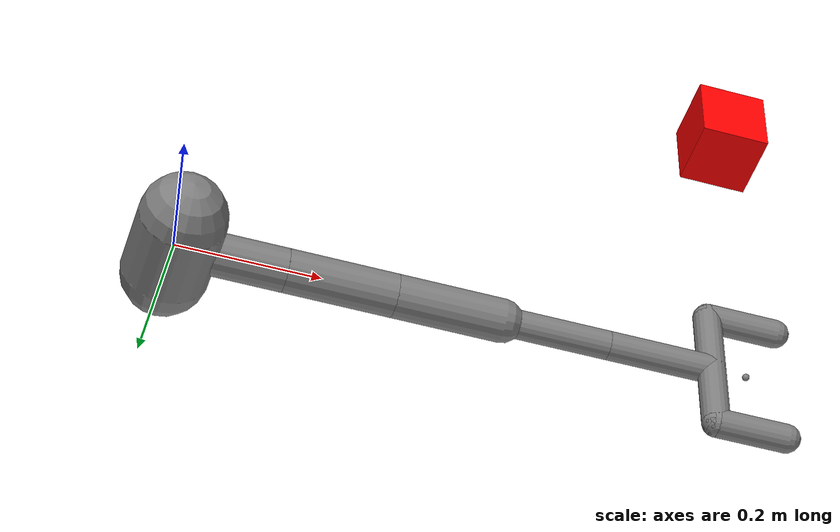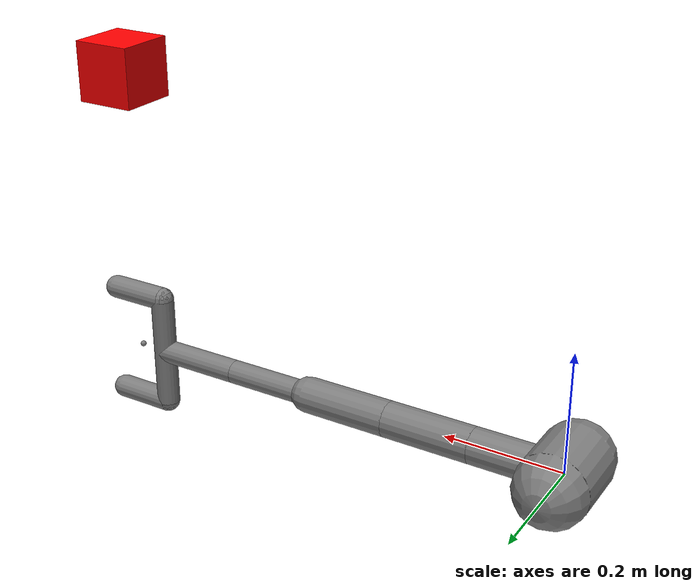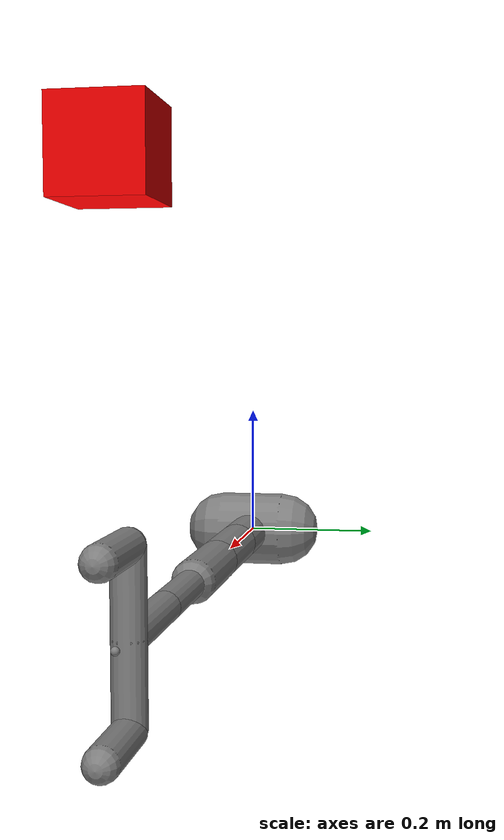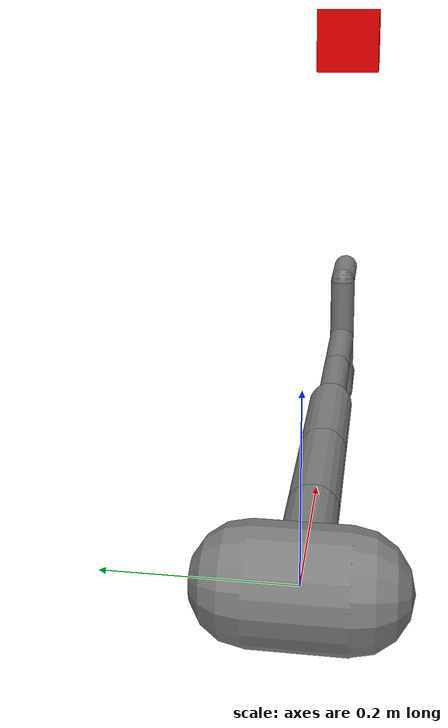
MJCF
<mujoco model="arm3d">
    <compiler inertiafromgeom="true" angle="radian" coordinate="local" />
    <option timestep="0.01" gravity="0 0 0" iterations="20" integrator="Euler" />

    <default>
        <joint armature='0.04' damping="1" limited="true"/>
        <geom friction=".8 .1 .1" density="300" margin="0.002" condim="1" contype="1" conaffinity="1"/>
    </default>

    <worldbody>
        <body name="palm" pos="0 0 0">
            <geom type="capsule" fromto="0 -0.05 0 0 0.05 0" size="0.06"/>
            <body name="proximal_1" pos="0 0 0">
                <joint name="proximal_j_1" type="hinge" pos="0 0 0" axis="0 1 0" range="-2.5236 2.3963" damping="1.0" />
                <geom type="capsule"  fromto="0 0 0 0.15 0 0" size="0.03" contype="1" conaffinity="1"/>
                <body name="distal_1" pos="0.15 0 0">
                    <joint name="distal_j_1" type="hinge" pos="0 0 0" axis="0 0 1" range="-2.3213 2.3" damping="1.0"/>
                    <geom type="capsule"  fromto="0 0 0 0.15 0 0" size="0.03" contype="1" conaffinity="1"/>
                    <body name="distal_2" pos="0.15 0 0">
                        <joint name="distal_j_2" type="hinge" pos="0 0 0" axis="0 1 0" range="-2.3213 2.3" damping="1.0"/>
                        <geom type="capsule" fromto="0 0 0 0.15 0 0" size="0.03" contype="1" conaffinity="1"/>
                        <body name="distal_3" pos="0.15 0 0">
                            <joint name="distal_j_3" type="hinge" pos="0 0 0" axis="0 1 0" range="-2.3213 2.3" damping="1.0"/>
                            <geom type="capsule" fromto="0 0 0 0.15 0 0" size="0.02" contype="1" conaffinity="1"/>
                            <body name="distal_4" pos="0.15 0 0">
                                <joint name="distal_j_4" type="hinge" pos="0 0 0" axis="0 1 0" range="-2.3213 2.3" damping="1.0"/>
                                <geom type="capsule" fromto="0 0 0 0.15 0 0" size="0.02" contype="1" conaffinity="1"/>
                                <body name="distal_5" pos="0.15 0 0">
                                    <site name="tip arm" pos="0.05 0 0" size="0.005" />
                                    <geom type="capsule" fromto="0 0 -0.1 0 0 0.1" size="0.02" contype="1" conaffinity="1" />
                                    <geom type="capsule" fromto="0 0 -0.1 0.1 0 -0.1" size="0.02" contype="1" conaffinity="1" />
                                    <geom type="capsule" fromto="0 0 0.1 0.1 0 0.1" size="0.02" contype="1" conaffinity="1" />
                                </body>
                            </body>
                        </body>
                    </body>
                </body>
            </body>
        </body>

        <body name="goalred" pos="0.8 0.0 0.5">
            <geom rgba="1. 0. 0. 1" type="box" size="0.05 0.05 0.05" density='0.00001' contype="1" conaffinity="1"/>
            <joint name="red_x" type="slide" pos="0 0 0" axis="1 0 0" range="-10 10" damping="0.5"/>
            <joint name="red_z" type="slide" pos="0 0 0" axis="0 0 1" range="-10 10" damping="0.5"/>
            <site name="goal pos1" pos="0 0 0" size="0.01" />
        </body>

        <body name="goalgreen" pos="0.8 0.0 0.5">
            <geom rgba="0. 0.5 0. 1" type="box" size="0.05 0.05 0.05" density='0.00001' contype="1" conaffinity="1"/>
            <joint name="green_x" type="slide" pos="0 0 0" axis="1 0 0" range="-10 10" damping="0.5"/>
            <joint name="green_z" type="slide" pos="0 0 0" axis="0 0 1" range="-10 10" damping="0.5"/>
            <site name="goal pos2" pos="0 0 0" size="0.01" />
        </body>

        <body name="goalyellow" pos="0.8 0.0 0.5">
            <geom rgba="1. 1. 0. 1" type="box" size="0.05 0.05 0.05" density='0.00001' contype="1" conaffinity="1"/>
            <joint name="yellow_x" type="slide" pos="0 0 0" axis="1 0 0" range="-10 10" damping="0.5"/>
            <joint name="yellow_z" type="slide" pos="0 0 0" axis="0 0 1" range="-10 10" damping="0.5"/>
            <site name="goal pos3" pos="0 0 0" size="0.01" />
        </body>

        <body name="goalblack" pos="0.8 0.0 0.5">
            <geom rgba="0. 0. 0. 1" type="box" size="0.05 0.05 0.05" density='0.00001' contype="1" conaffinity="1"/>
            <joint name="black_x" type="slide" pos="0 0 0" axis="1 0 0" range="-10 10" damping="0.5"/>
            <joint name="black_z" type="slide" pos="0 0 0" axis="0 0 1" range="-10 10" damping="0.5"/>
            <site name="goal pos4" pos="0 0 0" size="0.01" />
        </body>
    </worldbody>

    <actuator>
        <motor joint="proximal_j_1" ctrlrange="-2 2" ctrllimited="true"/>
        <motor joint="distal_j_1" ctrlrange="-2 2" ctrllimited="true"/>
        <motor joint="distal_j_2" ctrlrange="-2 2" ctrllimited="true"/>
        <motor joint="distal_j_3" ctrlrange="-2 2" ctrllimited="true"/>
        <motor joint="distal_j_4" ctrlrange="-2 2" ctrllimited="true"/>
    </actuator>
</mujoco>
